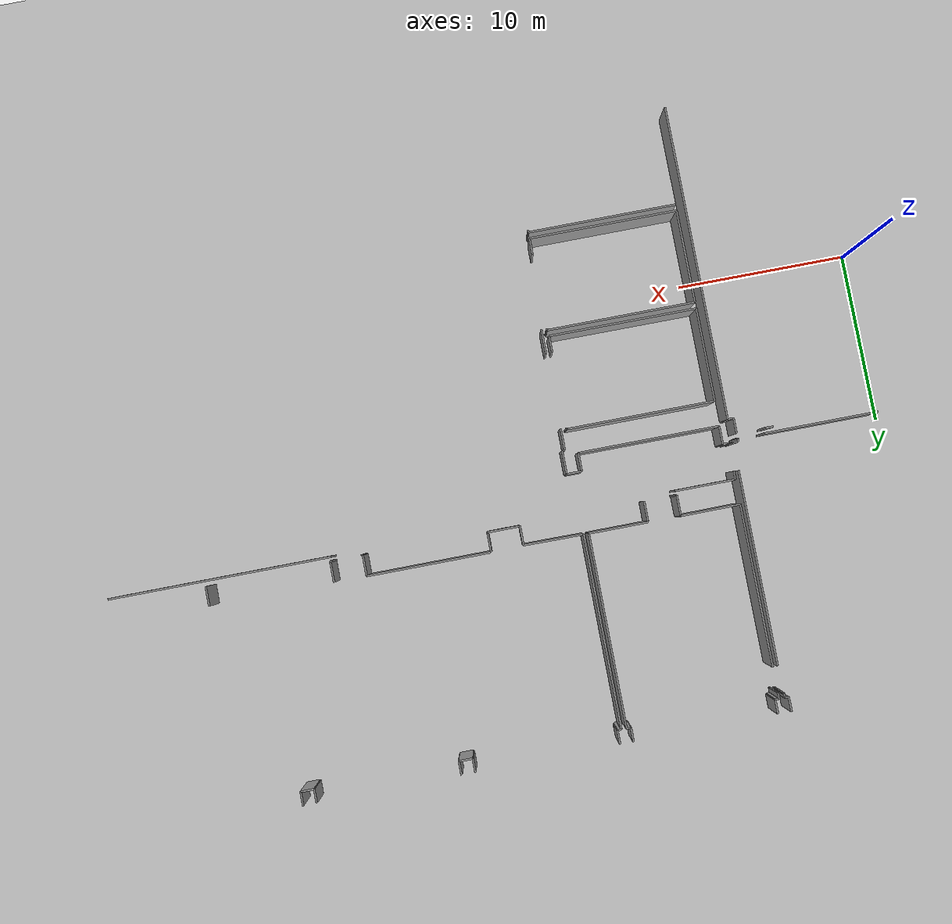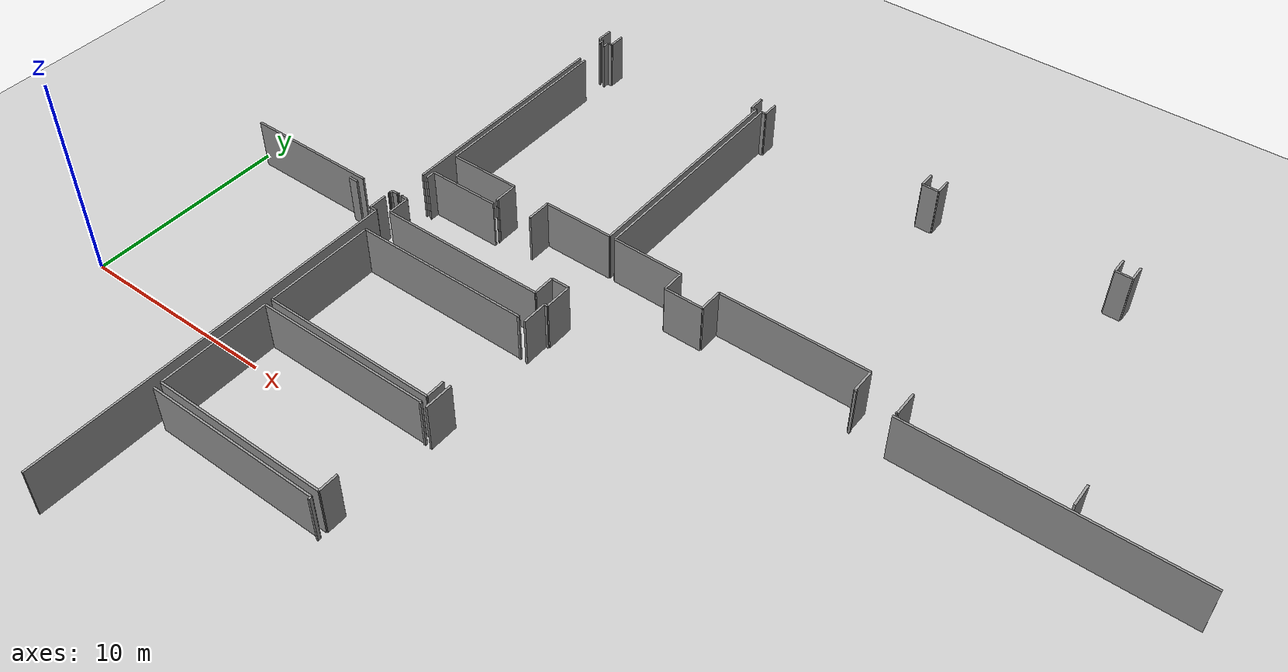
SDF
<sdf version="1.6">
 <world name="default">
  <model name="ground_plane">
   <static>1</static>
   <link name="link">
    <collision name="collision">
     <geometry><plane><normal>0 0 1</normal><size>100 100</size></plane></geometry>
     <surface><friction><ode><mu>100</mu><mu2>50</mu2></ode></friction></surface>
    </collision>
    <visual name="visual">
     <cast_shadows>0</cast_shadows>
     <geometry><plane><normal>0 0 1</normal><size>100 100</size></plane></geometry>
     <material>
      <script><uri>file://media/materials/scripts/gazebo.material</uri><name>Gazebo/Grey</name></script>
     </material>
    </visual>
   </link>
  </model>
  <model name="50045367">
   <static>1</static>
   <link name="Wall_54">
    <collision name="Wall_54_Collision">
     <geometry><box><size>0.841887291021 0.1 2.5</size></box></geometry>
     <pose>0.42094364551 0 1.25 0 0 0</pose>
    </collision>
    <visual name="Wall_54_Visual">
     <pose>0.42094364551 0 1.25 0 0 0</pose>
     <geometry><box><size>0.841887291021 0.1 2.5</size></box></geometry>
     <material>
      <script><uri>file://media/materials/scripts/gazebo.material</uri><name>Gazebo/Grey</name></script>
      <ambient>1 1 1 1</ambient>
     </material>
    </visual>
    <pose>62.0699730677 -0.0 0 0 0 -1.57079632679</pose>
   </link>
   <link name="Wall_55">
    <collision name="Wall_55_Collision">
     <geometry><box><size>0.215966258448 0.1 2.5</size></box></geometry>
     <pose>0.107983129224 0 1.25 0 0 0</pose>
    </collision>
    <visual name="Wall_55_Visual">
     <pose>0.107983129224 0 1.25 0 0 0</pose>
     <geometry><box><size>0.215966258448 0.1 2.5</size></box></geometry>
     <material>
      <script><uri>file://media/materials/scripts/gazebo.material</uri><name>Gazebo/Grey</name></script>
      <ambient>1 1 1 1</ambient>
     </material>
    </visual>
    <pose>62.0699730677 -0.841887291021 0 0 0 0.0</pose>
   </link>
   <link name="Wall_56">
    <collision name="Wall_56_Collision">
     <geometry><box><size>0.248361197215 0.1 2.5</size></box></geometry>
     <pose>0.124180598608 0 1.25 0 0 0</pose>
    </collision>
    <visual name="Wall_56_Visual">
     <pose>0.124180598608 0 1.25 0 0 0</pose>
     <geometry><box><size>0.248361197215 0.1 2.5</size></box></geometry>
     <material>
      <script><uri>file://media/materials/scripts/gazebo.material</uri><name>Gazebo/Grey</name></script>
      <ambient>1 1 1 1</ambient>
     </material>
    </visual>
    <pose>62.2859393262 -0.841887291021 0 0 0 -1.57079632679</pose>
   </link>
   <link name="Wall_57">
    <collision name="Wall_57_Collision">
     <geometry><box><size>0.0524670969053 0.1 2.5</size></box></geometry>
     <pose>0.0262335484527 0 1.25 0 0 0</pose>
    </collision>
    <visual name="Wall_57_Visual">
     <pose>0.0262335484527 0 1.25 0 0 0</pose>
     <geometry><box><size>0.0524670969053 0.1 2.5</size></box></geometry>
     <material>
      <script><uri>file://media/materials/scripts/gazebo.material</uri><name>Gazebo/Grey</name></script>
      <ambient>1 1 1 1</ambient>
     </material>
    </visual>
    <pose>62.2859393262 -1.09024848824 0 0 0 0.0</pose>
   </link>
   <link name="Wall_58">
    <collision name="Wall_58_Collision">
     <geometry><box><size>0.0763504243102 0.1 2.5</size></box></geometry>
     <pose>0.0381752121551 0 1.25 0 0 0</pose>
    </collision>
    <visual name="Wall_58_Visual">
     <pose>0.0381752121551 0 1.25 0 0 0</pose>
     <geometry><box><size>0.0763504243102 0.1 2.5</size></box></geometry>
     <material>
      <script><uri>file://media/materials/scripts/gazebo.material</uri><name>Gazebo/Grey</name></script>
      <ambient>1 1 1 1</ambient>
     </material>
    </visual>
    <pose>62.3384064231 -1.09024848824 0 0 0 -1.57079632679</pose>
   </link>
   <link name="Wall_59">
    <collision name="Wall_59_Collision">
     <geometry><box><size>11.4584074394 0.1 2.5</size></box></geometry>
     <pose>5.7292037197 0 1.25 0 0 0</pose>
    </collision>
    <visual name="Wall_59_Visual">
     <pose>5.7292037197 0 1.25 0 0 0</pose>
     <geometry><box><size>11.4584074394 0.1 2.5</size></box></geometry>
     <material>
      <script><uri>file://media/materials/scripts/gazebo.material</uri><name>Gazebo/Grey</name></script>
      <ambient>1 1 1 1</ambient>
     </material>
    </visual>
    <pose>62.3384064231 -2.70465978962 0 0 0 -1.57079632679</pose>
   </link>
   <link name="Wall_60">
    <collision name="Wall_60_Collision">
     <geometry><box><size>0.0884191269882 0.1 2.5</size></box></geometry>
     <pose>0.0442095634941 0 1.25 0 0 0</pose>
    </collision>
    <visual name="Wall_60_Visual">
     <pose>0.0442095634941 0 1.25 0 0 0</pose>
     <geometry><box><size>0.0884191269882 0.1 2.5</size></box></geometry>
     <material>
      <script><uri>file://media/materials/scripts/gazebo.material</uri><name>Gazebo/Grey</name></script>
      <ambient>1 1 1 1</ambient>
     </material>
    </visual>
    <pose>62.3384064231 -15.7161187052 0 0 0 -1.57079632679</pose>
   </link>
   <link name="Wall_61">
    <collision name="Wall_61_Collision">
     <geometry><box><size>0.316454088114 0.1 2.5</size></box></geometry>
     <pose>0.158227044057 0 1.25 0 0 0</pose>
    </collision>
    <visual name="Wall_61_Visual">
     <pose>0.158227044057 0 1.25 0 0 0</pose>
     <geometry><box><size>0.316454088114 0.1 2.5</size></box></geometry>
     <material>
      <script><uri>file://media/materials/scripts/gazebo.material</uri><name>Gazebo/Grey</name></script>
      <ambient>1 1 1 1</ambient>
     </material>
    </visual>
    <pose>62.3384064231 -15.8045378322 0 0 0 3.14159265359</pose>
   </link>
   <link name="Wall_62">
    <collision name="Wall_62_Collision">
     <geometry><box><size>0.183190202754 0.1 2.5</size></box></geometry>
     <pose>0.0915951013771 0 1.25 0 0 0</pose>
    </collision>
    <visual name="Wall_62_Visual">
     <pose>0.0915951013771 0 1.25 0 0 0</pose>
     <geometry><box><size>0.183190202754 0.1 2.5</size></box></geometry>
     <material>
      <script><uri>file://media/materials/scripts/gazebo.material</uri><name>Gazebo/Grey</name></script>
      <ambient>1 1 1 1</ambient>
     </material>
    </visual>
    <pose>62.021952335 -15.8045378322 0 0 0 -1.57079632679</pose>
   </link>
   <link name="Wall_63">
    <collision name="Wall_63_Collision">
     <geometry><box><size>0.0567864220743 0.1 2.5</size></box></geometry>
     <pose>0.0283932110371 0 1.25 0 0 0</pose>
    </collision>
    <visual name="Wall_63_Visual">
     <pose>0.0283932110371 0 1.25 0 0 0</pose>
     <geometry><box><size>0.0567864220743 0.1 2.5</size></box></geometry>
     <material>
      <script><uri>file://media/materials/scripts/gazebo.material</uri><name>Gazebo/Grey</name></script>
      <ambient>1 1 1 1</ambient>
     </material>
    </visual>
    <pose>62.021952335 -15.987728035 0 0 0 3.14159265359</pose>
   </link>
   <link name="Wall_64">
    <collision name="Wall_64_Collision">
     <geometry><box><size>6.72671375578 0.1 2.5</size></box></geometry>
     <pose>3.36335687789 0 1.25 0 0 0</pose>
    </collision>
    <visual name="Wall_64_Visual">
     <pose>3.36335687789 0 1.25 0 0 0</pose>
     <geometry><box><size>6.72671375578 0.1 2.5</size></box></geometry>
     <material>
      <script><uri>file://media/materials/scripts/gazebo.material</uri><name>Gazebo/Grey</name></script>
      <ambient>1 1 1 1</ambient>
     </material>
    </visual>
    <pose>60.4051272931 -15.987728035 0 0 0 3.14159265359</pose>
   </link>
   <link name="Wall_127">
    <collision name="Wall_127_Collision">
     <geometry><box><size>0.469409014686 0.1 2.5</size></box></geometry>
     <pose>0.234704507343 0 1.25 0 0 0</pose>
    </collision>
    <visual name="Wall_127_Visual">
     <pose>0.234704507343 0 1.25 0 0 0</pose>
     <geometry><box><size>0.469409014686 0.1 2.5</size></box></geometry>
     <material>
      <script><uri>file://media/materials/scripts/gazebo.material</uri><name>Gazebo/Grey</name></script>
      <ambient>1 1 1 1</ambient>
     </material>
    </visual>
    <pose>59.8363737995 -16.2907159917 0 0 0 0.0</pose>
   </link>
   <link name="Wall_128">
    <collision name="Wall_128_Collision">
     <geometry><box><size>0.906804207531 0.1 2.5</size></box></geometry>
     <pose>0.453402103765 0 1.25 0 0 0</pose>
    </collision>
    <visual name="Wall_128_Visual">
     <pose>0.453402103765 0 1.25 0 0 0</pose>
     <geometry><box><size>0.906804207531 0.1 2.5</size></box></geometry>
     <material>
      <script><uri>file://media/materials/scripts/gazebo.material</uri><name>Gazebo/Grey</name></script>
      <ambient>1 1 1 1</ambient>
     </material>
    </visual>
    <pose>62.021952335 -16.2907159917 0 0 0 -1.57079632679</pose>
   </link>
   <link name="Wall_129">
    <collision name="Wall_129_Collision">
     <geometry><box><size>0.349484221759 0.1 2.5</size></box></geometry>
     <pose>0.17474211088 0 1.25 0 0 0</pose>
    </collision>
    <visual name="Wall_129_Visual">
     <pose>0.17474211088 0 1.25 0 0 0</pose>
     <geometry><box><size>0.349484221759 0.1 2.5</size></box></geometry>
     <material>
      <script><uri>file://media/materials/scripts/gazebo.material</uri><name>Gazebo/Grey</name></script>
      <ambient>1 1 1 1</ambient>
     </material>
    </visual>
    <pose>62.021952335 -17.1975201992 0 0 0 0.0</pose>
   </link>
   <link name="Wall_130">
    <collision name="Wall_130_Collision">
     <geometry><box><size>18.742187103 0.1 2.5</size></box></geometry>
     <pose>9.3710935515 0 1.25 0 0 0</pose>
    </collision>
    <visual name="Wall_130_Visual">
     <pose>9.3710935515 0 1.25 0 0 0</pose>
     <geometry><box><size>18.742187103 0.1 2.5</size></box></geometry>
     <material>
      <script><uri>file://media/materials/scripts/gazebo.material</uri><name>Gazebo/Grey</name></script>
      <ambient>1 1 1 1</ambient>
     </material>
    </visual>
    <pose>62.3714365567 -17.1975201992 0 0 0 -1.57079632679</pose>
   </link>
   <link name="Wall_140">
    <collision name="Wall_140_Collision">
     <geometry><box><size>9.52373088063 0.1 2.5</size></box></geometry>
     <pose>4.76186544032 0 1.25 0 0 0</pose>
    </collision>
    <visual name="Wall_140_Visual">
     <pose>4.76186544032 0 1.25 0 0 0</pose>
     <geometry><box><size>9.52373088063 0.1 2.5</size></box></geometry>
     <material>
      <script><uri>file://media/materials/scripts/gazebo.material</uri><name>Gazebo/Grey</name></script>
      <ambient>1 1 1 1</ambient>
     </material>
    </visual>
    <pose>62.6211951827 -12.2278825144 0 0 0 1.57079632679</pose>
   </link>
   <link name="Wall_141">
    <collision name="Wall_141_Collision">
     <geometry><box><size>0.359139183902 0.1 2.5</size></box></geometry>
     <pose>0.179569591951 0 1.25 0 0 0</pose>
    </collision>
    <visual name="Wall_141_Visual">
     <pose>0.179569591951 0 1.25 0 0 0</pose>
     <geometry><box><size>0.359139183902 0.1 2.5</size></box></geometry>
     <material>
      <script><uri>file://media/materials/scripts/gazebo.material</uri><name>Gazebo/Grey</name></script>
      <ambient>1 1 1 1</ambient>
     </material>
    </visual>
    <pose>62.6211951827 -1.20280502058 0 0 0 1.57079632679</pose>
   </link>
   <link name="Wall_142">
    <collision name="Wall_142_Collision">
     <geometry><box><size>0.242263326389 0.1 2.5</size></box></geometry>
     <pose>0.121131663194 0 1.25 0 0 0</pose>
    </collision>
    <visual name="Wall_142_Visual">
     <pose>0.121131663194 0 1.25 0 0 0</pose>
     <geometry><box><size>0.242263326389 0.1 2.5</size></box></geometry>
     <material>
      <script><uri>file://media/materials/scripts/gazebo.material</uri><name>Gazebo/Grey</name></script>
      <ambient>1 1 1 1</ambient>
     </material>
    </visual>
    <pose>62.6211951827 -0.843665836679 0 0 0 0.0</pose>
   </link>
   <link name="Wall_143">
    <collision name="Wall_143_Collision">
     <geometry><box><size>0.827023730881 0.1 2.5</size></box></geometry>
     <pose>0.41351186544 0 1.25 0 0 0</pose>
    </collision>
    <visual name="Wall_143_Visual">
     <pose>0.41351186544 0 1.25 0 0 0</pose>
     <geometry><box><size>0.827023730881 0.1 2.5</size></box></geometry>
     <material>
      <script><uri>file://media/materials/scripts/gazebo.material</uri><name>Gazebo/Grey</name></script>
      <ambient>1 1 1 1</ambient>
     </material>
    </visual>
    <pose>62.8634585091 -0.843665836679 0 0 0 1.57079632679</pose>
   </link>
   <link name="Wall_144">
    <collision name="Wall_144_Collision">
     <geometry><box><size>0.818385080543 0.1 2.5</size></box></geometry>
     <pose>0.409192540271 0 1.25 0 0 0</pose>
    </collision>
    <visual name="Wall_144_Visual">
     <pose>0.409192540271 0 1.25 0 0 0</pose>
     <geometry><box><size>0.818385080543 0.1 2.5</size></box></geometry>
     <material>
      <script><uri>file://media/materials/scripts/gazebo.material</uri><name>Gazebo/Grey</name></script>
      <ambient>1 1 1 1</ambient>
     </material>
    </visual>
    <pose>71.3129478124 -0.0166421057981 0 0 0 -1.57079632679</pose>
   </link>
   <link name="Wall_145">
    <collision name="Wall_145_Collision">
     <geometry><box><size>0.252680522384 0.1 2.5</size></box></geometry>
     <pose>0.126340261192 0 1.25 0 0 0</pose>
    </collision>
    <visual name="Wall_145_Visual">
     <pose>0.126340261192 0 1.25 0 0 0</pose>
     <geometry><box><size>0.252680522384 0.1 2.5</size></box></geometry>
     <material>
      <script><uri>file://media/materials/scripts/gazebo.material</uri><name>Gazebo/Grey</name></script>
      <ambient>1 1 1 1</ambient>
     </material>
    </visual>
    <pose>71.3129478124 -0.835027186341 0 0 0 0.0</pose>
   </link>
   <link name="Wall_146">
    <collision name="Wall_146_Collision">
     <geometry><box><size>11.3829462879 0.1 2.5</size></box></geometry>
     <pose>5.69147314396 0 1.25 0 0 0</pose>
    </collision>
    <visual name="Wall_146_Visual">
     <pose>5.69147314396 0 1.25 0 0 0</pose>
     <geometry><box><size>11.3829462879 0.1 2.5</size></box></geometry>
     <material>
      <script><uri>file://media/materials/scripts/gazebo.material</uri><name>Gazebo/Grey</name></script>
      <ambient>1 1 1 1</ambient>
     </material>
    </visual>
    <pose>71.5656283348 -0.835027186341 0 0 0 -1.57079632679</pose>
   </link>
   <link name="Wall_147">
    <collision name="Wall_147_Collision">
     <geometry><box><size>3.50576756949 0.1 2.5</size></box></geometry>
     <pose>1.75288378475 0 1.25 0 0 0</pose>
    </collision>
    <visual name="Wall_147_Visual">
     <pose>1.75288378475 0 1.25 0 0 0</pose>
     <geometry><box><size>3.50576756949 0.1 2.5</size></box></geometry>
     <material>
      <script><uri>file://media/materials/scripts/gazebo.material</uri><name>Gazebo/Grey</name></script>
      <ambient>1 1 1 1</ambient>
     </material>
    </visual>
    <pose>71.5656283348 -12.2179734743 0 0 0 3.14159265359</pose>
   </link>
   <link name="Wall_148">
    <collision name="Wall_148_Collision">
     <geometry><box><size>1.21563595711 0.1 2.5</size></box></geometry>
     <pose>0.607817978556 0 1.25 0 0 0</pose>
    </collision>
    <visual name="Wall_148_Visual">
     <pose>0.607817978556 0 1.25 0 0 0</pose>
     <geometry><box><size>1.21563595711 0.1 2.5</size></box></geometry>
     <material>
      <script><uri>file://media/materials/scripts/gazebo.material</uri><name>Gazebo/Grey</name></script>
      <ambient>1 1 1 1</ambient>
     </material>
    </visual>
    <pose>68.0598607653 -12.2179734743 0 0 0 -1.57079632679</pose>
   </link>
   <link name="Wall_149">
    <collision name="Wall_149_Collision">
     <geometry><box><size>0.0884191269882 0.1 2.5</size></box></geometry>
     <pose>0.0442095634941 0 1.25 0 0 0</pose>
    </collision>
    <visual name="Wall_149_Visual">
     <pose>0.0442095634941 0 1.25 0 0 0</pose>
     <geometry><box><size>0.0884191269882 0.1 2.5</size></box></geometry>
     <material>
      <script><uri>file://media/materials/scripts/gazebo.material</uri><name>Gazebo/Grey</name></script>
      <ambient>1 1 1 1</ambient>
     </material>
    </visual>
    <pose>66.221606789 -13.4336094314 0 0 0 3.14159265359</pose>
   </link>
   <link name="Wall_150">
    <collision name="Wall_150_Collision">
     <geometry><box><size>1.22147974999 0.1 2.5</size></box></geometry>
     <pose>0.610739874994 0 1.25 0 0 0</pose>
    </collision>
    <visual name="Wall_150_Visual">
     <pose>0.610739874994 0 1.25 0 0 0</pose>
     <geometry><box><size>1.22147974999 0.1 2.5</size></box></geometry>
     <material>
      <script><uri>file://media/materials/scripts/gazebo.material</uri><name>Gazebo/Grey</name></script>
      <ambient>1 1 1 1</ambient>
     </material>
    </visual>
    <pose>66.133187662 -13.4336094314 0 0 0 1.57079632679</pose>
   </link>
   <link name="Wall_151">
    <collision name="Wall_151_Collision">
     <geometry><box><size>3.51202780831 0.1 2.5</size></box></geometry>
     <pose>1.75601390416 0 1.25 0 0 0</pose>
    </collision>
    <visual name="Wall_151_Visual">
     <pose>1.75601390416 0 1.25 0 0 0</pose>
     <geometry><box><size>3.51202780831 0.1 2.5</size></box></geometry>
     <material>
      <script><uri>file://media/materials/scripts/gazebo.material</uri><name>Gazebo/Grey</name></script>
      <ambient>1 1 1 1</ambient>
     </material>
    </visual>
    <pose>66.133187662 -12.2121296814 0 0 0 -3.13710724327</pose>
   </link>
   <link name="Wall_152">
    <collision name="Wall_152_Collision">
     <geometry><box><size>11.3960313024 0.1 2.5</size></box></geometry>
     <pose>5.6980156512 0 1.25 0 0 0</pose>
    </collision>
    <visual name="Wall_152_Visual">
     <pose>5.6980156512 0 1.25 0 0 0</pose>
     <geometry><box><size>11.3960313024 0.1 2.5</size></box></geometry>
     <material>
      <script><uri>file://media/materials/scripts/gazebo.material</uri><name>Gazebo/Grey</name></script>
      <ambient>1 1 1 1</ambient>
     </material>
    </visual>
    <pose>71.8621373037 -12.2278825144 0 0 0 1.57079632679</pose>
   </link>
   <link name="Wall_153">
    <collision name="Wall_153_Collision">
     <geometry><box><size>0.238452157122 0.1 2.5</size></box></geometry>
     <pose>0.119226078561 0 1.25 0 0 0</pose>
    </collision>
    <visual name="Wall_153_Visual">
     <pose>0.119226078561 0 1.25 0 0 0</pose>
     <geometry><box><size>0.238452157122 0.1 2.5</size></box></geometry>
     <material>
      <script><uri>file://media/materials/scripts/gazebo.material</uri><name>Gazebo/Grey</name></script>
      <ambient>1 1 1 1</ambient>
     </material>
    </visual>
    <pose>71.8621373037 -0.831851211952 0 0 0 0.0</pose>
   </link>
   <link name="Wall_154">
    <collision name="Wall_154_Collision">
     <geometry><box><size>0.812795365618 0.1 2.5</size></box></geometry>
     <pose>0.406397682809 0 1.25 0 0 0</pose>
    </collision>
    <visual name="Wall_154_Visual">
     <pose>0.406397682809 0 1.25 0 0 0</pose>
     <geometry><box><size>0.812795365618 0.1 2.5</size></box></geometry>
     <material>
      <script><uri>file://media/materials/scripts/gazebo.material</uri><name>Gazebo/Grey</name></script>
      <ambient>1 1 1 1</ambient>
     </material>
    </visual>
    <pose>72.1005894608 -0.831851211952 0 0 0 1.57079632679</pose>
   </link>
   <link name="Wall_155">
    <collision name="Wall_155_Collision">
     <geometry><box><size>0.803775598354 0.1 2.5</size></box></geometry>
     <pose>0.401887799177 0 1.25 0 0 0</pose>
    </collision>
    <visual name="Wall_155_Visual">
     <pose>0.401887799177 0 1.25 0 0 0</pose>
     <geometry><box><size>0.803775598354 0.1 2.5</size></box></geometry>
     <material>
      <script><uri>file://media/materials/scripts/gazebo.material</uri><name>Gazebo/Grey</name></script>
      <ambient>1 1 1 1</ambient>
     </material>
    </visual>
    <pose>80.5533817775 -0.0190558463337 0 0 0 -1.57079632679</pose>
   </link>
   <link name="Wall_156">
    <collision name="Wall_156_Collision">
     <geometry><box><size>0.808476040449 0.1 2.5</size></box></geometry>
     <pose>0.404238020225 0 1.25 0 0 0</pose>
    </collision>
    <visual name="Wall_156_Visual">
     <pose>0.404238020225 0 1.25 0 0 0</pose>
     <geometry><box><size>0.808476040449 0.1 2.5</size></box></geometry>
     <material>
      <script><uri>file://media/materials/scripts/gazebo.material</uri><name>Gazebo/Grey</name></script>
      <ambient>1 1 1 1</ambient>
     </material>
    </visual>
    <pose>80.5533817775 -0.822831444687 0 0 0 0.0</pose>
   </link>
   <link name="Wall_157">
    <collision name="Wall_157_Collision">
     <geometry><box><size>0.814827989227 0.1 2.5</size></box></geometry>
     <pose>0.407413994614 0 1.25 0 0 0</pose>
    </collision>
    <visual name="Wall_157_Visual">
     <pose>0.407413994614 0 1.25 0 0 0</pose>
     <geometry><box><size>0.814827989227 0.1 2.5</size></box></geometry>
     <material>
      <script><uri>file://media/materials/scripts/gazebo.material</uri><name>Gazebo/Grey</name></script>
      <ambient>1 1 1 1</ambient>
     </material>
    </visual>
    <pose>81.361857818 -0.822831444687 0 0 0 1.57079632679</pose>
   </link>
   <link name="Wall_158">
    <collision name="Wall_158_Collision">
     <geometry><box><size>0.816352456934 0.1 2.5</size></box></geometry>
     <pose>0.408176228467 0 1.25 0 0 0</pose>
    </collision>
    <visual name="Wall_158_Visual">
     <pose>0.408176228467 0 1.25 0 0 0</pose>
     <geometry><box><size>0.816352456934 0.1 2.5</size></box></geometry>
     <material>
      <script><uri>file://media/materials/scripts/gazebo.material</uri><name>Gazebo/Grey</name></script>
      <ambient>1 1 1 1</ambient>
     </material>
    </visual>
    <pose>89.7976269119 -0.00800345546013 0 0 0 -1.57079632679</pose>
   </link>
   <link name="Wall_159">
    <collision name="Wall_159_Collision">
     <geometry><box><size>0.791706895676 0.1 2.5</size></box></geometry>
     <pose>0.395853447838 0 1.25 0 0 0</pose>
    </collision>
    <visual name="Wall_159_Visual">
     <pose>0.395853447838 0 1.25 0 0 0</pose>
     <geometry><box><size>0.791706895676 0.1 2.5</size></box></geometry>
     <material>
      <script><uri>file://media/materials/scripts/gazebo.material</uri><name>Gazebo/Grey</name></script>
      <ambient>1 1 1 1</ambient>
     </material>
    </visual>
    <pose>89.7976269119 -0.824355912394 0 0 0 0.0</pose>
   </link>
   <link name="Wall_160">
    <collision name="Wall_160_Collision">
     <geometry><box><size>0.820798821078 0.1 2.5</size></box></geometry>
     <pose>0.410399410539 0 1.25 0 0 0</pose>
    </collision>
    <visual name="Wall_160_Visual">
     <pose>0.410399410539 0 1.25 0 0 0</pose>
     <geometry><box><size>0.820798821078 0.1 2.5</size></box></geometry>
     <material>
      <script><uri>file://media/materials/scripts/gazebo.material</uri><name>Gazebo/Grey</name></script>
      <ambient>1 1 1 1</ambient>
     </material>
    </visual>
    <pose>90.5893338076 -0.824355912394 0 0 0 1.57079632679</pose>
   </link>
   <link name="Wall_170">
    <collision name="Wall_170_Collision">
     <geometry><box><size>1.1621525484 0.1 2.5</size></box></geometry>
     <pose>0.581076274201 0 1.25 0 0 0</pose>
    </collision>
    <visual name="Wall_170_Visual">
     <pose>0.581076274201 0 1.25 0 0 0</pose>
     <geometry><box><size>1.1621525484 0.1 2.5</size></box></geometry>
     <material>
      <script><uri>file://media/materials/scripts/gazebo.material</uri><name>Gazebo/Grey</name></script>
      <ambient>1 1 1 1</ambient>
     </material>
    </visual>
    <pose>93.8651608313 -13.3684384369 0 0 0 1.57079632679</pose>
   </link>
   <link name="Wall_172">
    <collision name="Wall_172_Collision">
     <geometry><box><size>1.23481884242 0.1 2.5</size></box></geometry>
     <pose>0.61740942121 0 1.25 0 0 0</pose>
    </collision>
    <visual name="Wall_172_Visual">
     <pose>0.61740942121 0 1.25 0 0 0</pose>
     <geometry><box><size>1.23481884242 0.1 2.5</size></box></geometry>
     <material>
      <script><uri>file://media/materials/scripts/gazebo.material</uri><name>Gazebo/Grey</name></script>
      <ambient>1 1 1 1</ambient>
     </material>
    </visual>
    <pose>86.543523553 -12.2062858885 0 0 0 -1.57079632679</pose>
   </link>
   <link name="Wall_173">
    <collision name="Wall_173_Collision">
     <geometry><box><size>0.0799075156258 0.1 2.5</size></box></geometry>
     <pose>0.0399537578129 0 1.25 0 0 0</pose>
    </collision>
    <visual name="Wall_173_Visual">
     <pose>0.0399537578129 0 1.25 0 0 0</pose>
     <geometry><box><size>0.0799075156258 0.1 2.5</size></box></geometry>
     <material>
      <script><uri>file://media/materials/scripts/gazebo.material</uri><name>Gazebo/Grey</name></script>
      <ambient>1 1 1 1</ambient>
     </material>
    </visual>
    <pose>86.543523553 -13.4411047309 0 0 0 3.14159265359</pose>
   </link>
   <link name="Wall_174">
    <collision name="Wall_174_Collision">
     <geometry><box><size>0.100995985568 0.1 2.5</size></box></geometry>
     <pose>0.0504979927842 0 1.25 0 0 0</pose>
    </collision>
    <visual name="Wall_174_Visual">
     <pose>0.0504979927842 0 1.25 0 0 0</pose>
     <geometry><box><size>0.100995985568 0.1 2.5</size></box></geometry>
     <material>
      <script><uri>file://media/materials/scripts/gazebo.material</uri><name>Gazebo/Grey</name></script>
      <ambient>1 1 1 1</ambient>
     </material>
    </visual>
    <pose>84.7282636313 -13.4411047309 0 0 0 3.14159265359</pose>
   </link>
   <link name="Wall_175">
    <collision name="Wall_175_Collision">
     <geometry><box><size>1.23037247828 0.1 2.5</size></box></geometry>
     <pose>0.615186239138 0 1.25 0 0 0</pose>
    </collision>
    <visual name="Wall_175_Visual">
     <pose>0.615186239138 0 1.25 0 0 0</pose>
     <geometry><box><size>1.23037247828 0.1 2.5</size></box></geometry>
     <material>
      <script><uri>file://media/materials/scripts/gazebo.material</uri><name>Gazebo/Grey</name></script>
      <ambient>1 1 1 1</ambient>
     </material>
    </visual>
    <pose>84.6272676457 -13.4411047309 0 0 0 1.57079632679</pose>
   </link>
   <link name="Wall_176">
    <collision name="Wall_176_Collision">
     <geometry><box><size>7.31846130393 0.1 2.5</size></box></geometry>
     <pose>3.65923065196 0 1.25 0 0 0</pose>
    </collision>
    <visual name="Wall_176_Visual">
     <pose>3.65923065196 0 1.25 0 0 0</pose>
     <geometry><box><size>7.31846130393 0.1 2.5</size></box></geometry>
     <material>
      <script><uri>file://media/materials/scripts/gazebo.material</uri><name>Gazebo/Grey</name></script>
      <ambient>1 1 1 1</ambient>
     </material>
    </visual>
    <pose>84.6272676457 -12.2107322527 0 0 0 3.14159265359</pose>
   </link>
   <link name="Wall_177">
    <collision name="Wall_177_Collision">
     <geometry><box><size>1.16990192591 0.1 2.5</size></box></geometry>
     <pose>0.584950962955 0 1.25 0 0 0</pose>
    </collision>
    <visual name="Wall_177_Visual">
     <pose>0.584950962955 0 1.25 0 0 0</pose>
     <geometry><box><size>1.16990192591 0.1 2.5</size></box></geometry>
     <material>
      <script><uri>file://media/materials/scripts/gazebo.material</uri><name>Gazebo/Grey</name></script>
      <ambient>1 1 1 1</ambient>
     </material>
    </visual>
    <pose>77.3088063418 -12.2107322527 0 0 0 -1.57079632679</pose>
   </link>
   <link name="Wall_178">
    <collision name="Wall_178_Collision">
     <geometry><box><size>1.91168250419 0.1 2.5</size></box></geometry>
     <pose>0.955841252096 0 1.25 0 0 0</pose>
    </collision>
    <visual name="Wall_178_Visual">
     <pose>0.955841252096 0 1.25 0 0 0</pose>
     <geometry><box><size>1.91168250419 0.1 2.5</size></box></geometry>
     <material>
      <script><uri>file://media/materials/scripts/gazebo.material</uri><name>Gazebo/Grey</name></script>
      <ambient>1 1 1 1</ambient>
     </material>
    </visual>
    <pose>77.3088063418 -13.3806341786 0 0 0 3.14159265359</pose>
   </link>
   <link name="Wall_179">
    <collision name="Wall_179_Collision">
     <geometry><box><size>1.12391381676 0.1 2.5</size></box></geometry>
     <pose>0.561956908379 0 1.25 0 0 0</pose>
    </collision>
    <visual name="Wall_179_Visual">
     <pose>0.561956908379 0 1.25 0 0 0</pose>
     <geometry><box><size>1.12391381676 0.1 2.5</size></box></geometry>
     <material>
      <script><uri>file://media/materials/scripts/gazebo.material</uri><name>Gazebo/Grey</name></script>
      <ambient>1 1 1 1</ambient>
     </material>
    </visual>
    <pose>75.3971238376 -13.3806341786 0 0 0 1.57079632679</pose>
   </link>
   <link name="Wall_180">
    <collision name="Wall_180_Collision">
     <geometry><box><size>3.53510415916 0.1 2.5</size></box></geometry>
     <pose>1.76755207958 0 1.25 0 0 0</pose>
    </collision>
    <visual name="Wall_180_Visual">
     <pose>1.76755207958 0 1.25 0 0 0</pose>
     <geometry><box><size>3.53510415916 0.1 2.5</size></box></geometry>
     <material>
      <script><uri>file://media/materials/scripts/gazebo.material</uri><name>Gazebo/Grey</name></script>
      <ambient>1 1 1 1</ambient>
     </material>
    </visual>
    <pose>75.3971238376 -12.2567203618 0 0 0 3.13343499656</pose>
   </link>
   <link name="Wall_250">
    <collision name="Wall_250_Collision">
     <geometry><box><size>5.52149499466 0.1 2.5</size></box></geometry>
     <pose>2.76074749733 0 1.25 0 0 0</pose>
    </collision>
    <visual name="Wall_250_Visual">
     <pose>2.76074749733 0 1.25 0 0 0</pose>
     <geometry><box><size>5.52149499466 0.1 2.5</size></box></geometry>
     <material>
      <script><uri>file://media/materials/scripts/gazebo.material</uri><name>Gazebo/Grey</name></script>
      <ambient>1 1 1 1</ambient>
     </material>
    </visual>
    <pose>62.8964886427 -23.9064484984 0 0 0 1.57079632679</pose>
   </link>
   <link name="Wall_251">
    <collision name="Wall_251_Collision">
     <geometry><box><size>8.74599827227 0.1 2.5</size></box></geometry>
     <pose>4.37299913613 0 1.25 0 0 0</pose>
    </collision>
    <visual name="Wall_251_Visual">
     <pose>4.37299913613 0 1.25 0 0 0</pose>
     <geometry><box><size>8.74599827227 0.1 2.5</size></box></geometry>
     <material>
      <script><uri>file://media/materials/scripts/gazebo.material</uri><name>Gazebo/Grey</name></script>
      <ambient>1 1 1 1</ambient>
     </material>
    </visual>
    <pose>62.8964886427 -18.3849535037 0 0 0 0.0</pose>
   </link>
   <link name="Wall_252">
    <collision name="Wall_252_Collision">
     <geometry><box><size>0.083591645917 0.1 2.5</size></box></geometry>
     <pose>0.0417958229585 0 1.25 0 0 0</pose>
    </collision>
    <visual name="Wall_252_Visual">
     <pose>0.0417958229585 0 1.25 0 0 0</pose>
     <geometry><box><size>0.083591645917 0.1 2.5</size></box></geometry>
     <material>
      <script><uri>file://media/materials/scripts/gazebo.material</uri><name>Gazebo/Grey</name></script>
      <ambient>1 1 1 1</ambient>
     </material>
    </visual>
    <pose>71.642486915 -18.3849535037 0 0 0 -1.57079632679</pose>
   </link>
   <link name="Wall_253">
    <collision name="Wall_253_Collision">
     <geometry><box><size>0.950124498196 0.1 2.5</size></box></geometry>
     <pose>0.475062249098 0 1.25 0 0 0</pose>
    </collision>
    <visual name="Wall_253_Visual">
     <pose>0.475062249098 0 1.25 0 0 0</pose>
     <geometry><box><size>0.950124498196 0.1 2.5</size></box></geometry>
     <material>
      <script><uri>file://media/materials/scripts/gazebo.material</uri><name>Gazebo/Grey</name></script>
      <ambient>1 1 1 1</ambient>
     </material>
    </visual>
    <pose>71.642486915 -22.978428782 0 0 0 -1.57079632679</pose>
   </link>
   <link name="Wall_254">
    <collision name="Wall_254_Collision">
     <geometry><box><size>8.74602620622 0.1 2.5</size></box></geometry>
     <pose>4.37301310311 0 1.25 0 0 0</pose>
    </collision>
    <visual name="Wall_254_Visual">
     <pose>4.37301310311 0 1.25 0 0 0</pose>
     <geometry><box><size>8.74602620622 0.1 2.5</size></box></geometry>
     <material>
      <script><uri>file://media/materials/scripts/gazebo.material</uri><name>Gazebo/Grey</name></script>
      <ambient>1 1 1 1</ambient>
     </material>
    </visual>
    <pose>71.642486915 -23.9285532801 0 0 0 3.13906524231</pose>
   </link>
   <link name="Wall_255">
    <collision name="Wall_255_Collision">
     <geometry><box><size>5.50815590223 0.1 2.5</size></box></geometry>
     <pose>2.75407795112 0 1.25 0 0 0</pose>
    </collision>
    <visual name="Wall_255_Visual">
     <pose>2.75407795112 0 1.25 0 0 0</pose>
     <geometry><box><size>5.50815590223 0.1 2.5</size></box></geometry>
     <material>
      <script><uri>file://media/materials/scripts/gazebo.material</uri><name>Gazebo/Grey</name></script>
      <ambient>1 1 1 1</ambient>
     </material>
    </visual>
    <pose>62.8969967986 -29.7888612226 0 0 0 1.57079632679</pose>
   </link>
   <link name="Wall_256">
    <collision name="Wall_256_Collision">
     <geometry><box><size>8.78550739367 0.1 2.5</size></box></geometry>
     <pose>4.39275369683 0 1.25 0 0 0</pose>
    </collision>
    <visual name="Wall_256_Visual">
     <pose>4.39275369683 0 1.25 0 0 0</pose>
     <geometry><box><size>8.78550739367 0.1 2.5</size></box></geometry>
     <material>
      <script><uri>file://media/materials/scripts/gazebo.material</uri><name>Gazebo/Grey</name></script>
      <ambient>1 1 1 1</ambient>
     </material>
    </visual>
    <pose>62.8969967986 -24.2807053204 0 0 0 0.0</pose>
   </link>
   <link name="Wall_257">
    <collision name="Wall_257_Collision">
     <geometry><box><size>0.106458661517 0.1 2.5</size></box></geometry>
     <pose>0.0532293307587 0 1.25 0 0 0</pose>
    </collision>
    <visual name="Wall_257_Visual">
     <pose>0.0532293307587 0 1.25 0 0 0</pose>
     <geometry><box><size>0.106458661517 0.1 2.5</size></box></geometry>
     <material>
      <script><uri>file://media/materials/scripts/gazebo.material</uri><name>Gazebo/Grey</name></script>
      <ambient>1 1 1 1</ambient>
     </material>
    </visual>
    <pose>71.6825041923 -24.2807053204 0 0 0 -1.57079632679</pose>
   </link>
   <link name="Wall_258">
    <collision name="Wall_258_Collision">
     <geometry><box><size>0.958763148534 0.1 2.5</size></box></geometry>
     <pose>0.479381574267 0 1.25 0 0 0</pose>
    </collision>
    <visual name="Wall_258_Visual">
     <pose>0.479381574267 0 1.25 0 0 0</pose>
     <geometry><box><size>0.958763148534 0.1 2.5</size></box></geometry>
     <material>
      <script><uri>file://media/materials/scripts/gazebo.material</uri><name>Gazebo/Grey</name></script>
      <ambient>1 1 1 1</ambient>
     </material>
    </visual>
    <pose>71.6825041923 -28.8323847756 0 0 0 -1.57079632679</pose>
   </link>
   <link name="Wall_259">
    <collision name="Wall_259_Collision">
     <geometry><box><size>8.78550769126 0.1 2.5</size></box></geometry>
     <pose>4.39275384563 0 1.25 0 0 0</pose>
    </collision>
    <visual name="Wall_259_Visual">
     <pose>4.39275384563 0 1.25 0 0 0</pose>
     <geometry><box><size>8.78550769126 0.1 2.5</size></box></geometry>
     <material>
      <script><uri>file://media/materials/scripts/gazebo.material</uri><name>Gazebo/Grey</name></script>
      <ambient>1 1 1 1</ambient>
     </material>
    </visual>
    <pose>71.6825041923 -29.7911479242 0 0 0 3.14133237249</pose>
   </link>
   <link name="Wall_261">
    <collision name="Wall_261_Collision">
     <geometry><box><size>8.78233141928 0.1 2.5</size></box></geometry>
     <pose>4.39116570964 0 1.25 0 0 0</pose>
    </collision>
    <visual name="Wall_261_Visual">
     <pose>4.39116570964 0 1.25 0 0 0</pose>
     <geometry><box><size>8.78233141928 0.1 2.5</size></box></geometry>
     <material>
      <script><uri>file://media/materials/scripts/gazebo.material</uri><name>Gazebo/Grey</name></script>
      <ambient>1 1 1 1</ambient>
     </material>
    </visual>
    <pose>62.8842929011 -30.1478733675 0 0 0 0.0</pose>
   </link>
   <link name="Wall_262">
    <collision name="Wall_262_Collision">
     <geometry><box><size>0.152065653743 0.1 2.5</size></box></geometry>
     <pose>0.0760328268713 0 1.25 0 0 0</pose>
    </collision>
    <visual name="Wall_262_Visual">
     <pose>0.0760328268713 0 1.25 0 0 0</pose>
     <geometry><box><size>0.152065653743 0.1 2.5</size></box></geometry>
     <material>
      <script><uri>file://media/materials/scripts/gazebo.material</uri><name>Gazebo/Grey</name></script>
      <ambient>1 1 1 1</ambient>
     </material>
    </visual>
    <pose>71.6666243203 -30.1478733675 0 0 0 -1.57079632679</pose>
   </link>
   <link name="Wall_267">
    <collision name="Wall_267_Collision">
     <geometry><box><size>1.43096702068 0.1 2.5</size></box></geometry>
     <pose>0.715483510341 0 1.25 0 0 0</pose>
    </collision>
    <visual name="Wall_267_Visual">
     <pose>0.715483510341 0 1.25 0 0 0</pose>
     <geometry><box><size>1.43096702068 0.1 2.5</size></box></geometry>
     <material>
      <script><uri>file://media/materials/scripts/gazebo.material</uri><name>Gazebo/Grey</name></script>
      <ambient>1 1 1 1</ambient>
     </material>
    </visual>
    <pose>72.0100106713 -24.3799227603 0 0 0 1.57079632679</pose>
   </link>
   <link name="Wall_268">
    <collision name="Wall_268_Collision">
     <geometry><box><size>1.2863966665 0.1 2.5</size></box></geometry>
     <pose>0.643198333249 0 1.25 0 0 0</pose>
    </collision>
    <visual name="Wall_268_Visual">
     <pose>0.643198333249 0 1.25 0 0 0</pose>
     <geometry><box><size>1.2863966665 0.1 2.5</size></box></geometry>
     <material>
      <script><uri>file://media/materials/scripts/gazebo.material</uri><name>Gazebo/Grey</name></script>
      <ambient>1 1 1 1</ambient>
     </material>
    </visual>
    <pose>72.0100106713 -18.4851872554 0 0 0 1.57079632679</pose>
   </link>
   <link name="Wall_269">
    <collision name="Wall_269_Collision">
     <geometry><box><size>0.158671680472 0.1 2.5</size></box></geometry>
     <pose>0.0793358402358 0 1.25 0 0 0</pose>
    </collision>
    <visual name="Wall_269_Visual">
     <pose>0.0793358402358 0 1.25 0 0 0</pose>
     <geometry><box><size>0.158671680472 0.1 2.5</size></box></geometry>
     <material>
      <script><uri>file://media/materials/scripts/gazebo.material</uri><name>Gazebo/Grey</name></script>
      <ambient>1 1 1 1</ambient>
     </material>
    </visual>
    <pose>72.0100106713 -17.198790589 0 0 0 0.0</pose>
   </link>
   <link name="Wall_270">
    <collision name="Wall_270_Collision">
     <geometry><box><size>1.37977031353 0.1 2.5</size></box></geometry>
     <pose>0.689885156766 0 1.25 0 0 0</pose>
    </collision>
    <visual name="Wall_270_Visual">
     <pose>0.689885156766 0 1.25 0 0 0</pose>
     <geometry><box><size>1.37977031353 0.1 2.5</size></box></geometry>
     <material>
      <script><uri>file://media/materials/scripts/gazebo.material</uri><name>Gazebo/Grey</name></script>
      <ambient>1 1 1 1</ambient>
     </material>
    </visual>
    <pose>72.1686823517 -17.198790589 0 0 0 1.57079632679</pose>
   </link>
   <link name="Wall_271">
    <collision name="Wall_271_Collision">
     <geometry><box><size>0.894608465877 0.1 2.5</size></box></geometry>
     <pose>0.447304232939 0 1.25 0 0 0</pose>
    </collision>
    <visual name="Wall_271_Visual">
     <pose>0.447304232939 0 1.25 0 0 0</pose>
     <geometry><box><size>0.894608465877 0.1 2.5</size></box></geometry>
     <material>
      <script><uri>file://media/materials/scripts/gazebo.material</uri><name>Gazebo/Grey</name></script>
      <ambient>1 1 1 1</ambient>
     </material>
    </visual>
    <pose>72.1686823517 -15.8190202754 0 0 0 3.14159265359</pose>
   </link>
   <link name="Wall_272">
    <collision name="Wall_272_Collision">
     <geometry><box><size>1.07945017531 0.1 2.5</size></box></geometry>
     <pose>0.539725087657 0 1.25 0 0 0</pose>
    </collision>
    <visual name="Wall_272_Visual">
     <pose>0.539725087657 0 1.25 0 0 0</pose>
     <geometry><box><size>1.07945017531 0.1 2.5</size></box></geometry>
     <material>
      <script><uri>file://media/materials/scripts/gazebo.material</uri><name>Gazebo/Grey</name></script>
      <ambient>1 1 1 1</ambient>
     </material>
    </visual>
    <pose>71.2740738859 -15.8190202754 0 0 0 -1.57079632679</pose>
   </link>
   <link name="Wall_273">
    <collision name="Wall_273_Collision">
     <geometry><box><size>8.34417399258 0.1 2.5</size></box></geometry>
     <pose>4.17208699629 0 1.25 0 0 0</pose>
    </collision>
    <visual name="Wall_273_Visual">
     <pose>4.17208699629 0 1.25 0 0 0</pose>
     <geometry><box><size>8.34417399258 0.1 2.5</size></box></geometry>
     <material>
      <script><uri>file://media/materials/scripts/gazebo.material</uri><name>Gazebo/Grey</name></script>
      <ambient>1 1 1 1</ambient>
     </material>
    </visual>
    <pose>71.2740738859 -16.8984704507 0 0 0 3.14159265359</pose>
   </link>
   <link name="Wall_274">
    <collision name="Wall_274_Collision">
     <geometry><box><size>1.07500381117 0.1 2.5</size></box></geometry>
     <pose>0.537501905585 0 1.25 0 0 0</pose>
    </collision>
    <visual name="Wall_274_Visual">
     <pose>0.537501905585 0 1.25 0 0 0</pose>
     <geometry><box><size>1.07500381117 0.1 2.5</size></box></geometry>
     <material>
      <script><uri>file://media/materials/scripts/gazebo.material</uri><name>Gazebo/Grey</name></script>
      <ambient>1 1 1 1</ambient>
     </material>
    </visual>
    <pose>62.9298998933 -16.8984704507 0 0 0 1.57079632679</pose>
   </link>
   <link name="Wall_275">
    <collision name="Wall_275_Collision">
     <geometry><box><size>0.319503023528 0.1 2.5</size></box></geometry>
     <pose>0.159751511764 0 1.25 0 0 0</pose>
    </collision>
    <visual name="Wall_275_Visual">
     <pose>0.159751511764 0 1.25 0 0 0</pose>
     <geometry><box><size>0.319503023528 0.1 2.5</size></box></geometry>
     <material>
      <script><uri>file://media/materials/scripts/gazebo.material</uri><name>Gazebo/Grey</name></script>
      <ambient>1 1 1 1</ambient>
     </material>
    </visual>
    <pose>62.9298998933 -15.8234666396 0 0 0 3.14159265359</pose>
   </link>
   <link name="Wall_276">
    <collision name="Wall_276_Collision">
     <geometry><box><size>0.0871487372326 0.1 2.5</size></box></geometry>
     <pose>0.0435743686163 0 1.25 0 0 0</pose>
    </collision>
    <visual name="Wall_276_Visual">
     <pose>0.0435743686163 0 1.25 0 0 0</pose>
     <geometry><box><size>0.0871487372326 0.1 2.5</size></box></geometry>
     <material>
      <script><uri>file://media/materials/scripts/gazebo.material</uri><name>Gazebo/Grey</name></script>
      <ambient>1 1 1 1</ambient>
     </material>
    </visual>
    <pose>62.6103968698 -15.8234666396 0 0 0 1.57079632679</pose>
   </link>
   <link name="Wall_277">
    <collision name="Wall_277_Collision">
     <geometry><box><size>0.494435692871 0.1 2.5</size></box></geometry>
     <pose>0.247217846435 0 1.25 0 0 0</pose>
    </collision>
    <visual name="Wall_277_Visual">
     <pose>0.247217846435 0 1.25 0 0 0</pose>
     <geometry><box><size>0.494435692871 0.1 2.5</size></box></geometry>
     <material>
      <script><uri>file://media/materials/scripts/gazebo.material</uri><name>Gazebo/Grey</name></script>
      <ambient>1 1 1 1</ambient>
     </material>
    </visual>
    <pose>62.6103968698 -14.1833934651 0 0 0 1.57079632679</pose>
   </link>
   <link name="Wall_278">
    <collision name="Wall_278_Collision">
     <geometry><box><size>3.56763555059 0.1 2.5</size></box></geometry>
     <pose>1.78381777529 0 1.25 0 0 0</pose>
    </collision>
    <visual name="Wall_278_Visual">
     <pose>1.78381777529 0 1.25 0 0 0</pose>
     <geometry><box><size>3.56763555059 0.1 2.5</size></box></geometry>
     <material>
      <script><uri>file://media/materials/scripts/gazebo.material</uri><name>Gazebo/Grey</name></script>
      <ambient>1 1 1 1</ambient>
     </material>
    </visual>
    <pose>62.6103968698 -13.6889577722 0 0 0 0.0</pose>
   </link>
   <link name="Wall_279">
    <collision name="Wall_279_Collision">
     <geometry><box><size>13.0831088978 0.1 2.5</size></box></geometry>
     <pose>6.5415544489 0 1.25 0 0 0</pose>
    </collision>
    <visual name="Wall_279_Visual">
     <pose>6.5415544489 0 1.25 0 0 0</pose>
     <geometry><box><size>13.0831088978 0.1 2.5</size></box></geometry>
     <material>
      <script><uri>file://media/materials/scripts/gazebo.material</uri><name>Gazebo/Grey</name></script>
      <ambient>1 1 1 1</ambient>
     </material>
    </visual>
    <pose>86.4563748158 -13.6889577722 0 0 0 0.0</pose>
   </link>
   <pose>-53.2 25.6193734438 0 0 0 0</pose>
  </model>
 </world>
</sdf>
